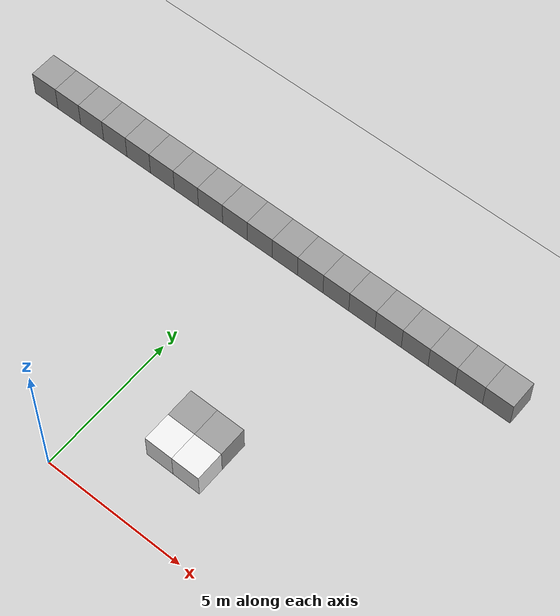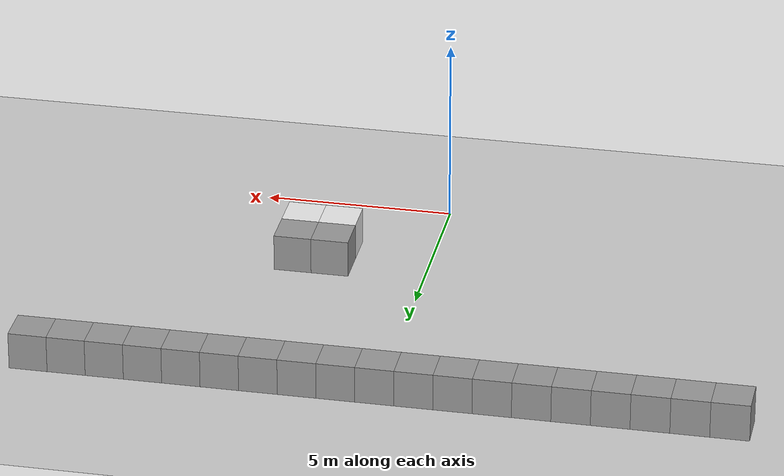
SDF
<sdf version="1.6">
 <world name="default">
  <model name="ground_plane">
   <static>1</static>
   <link name="link">
    <collision name="collision">
     <geometry><plane><normal>0 0 1</normal><size>100 100</size></plane></geometry>
     <surface><friction><ode><mu>100</mu><mu2>50</mu2></ode></friction></surface>
    </collision>
    <visual name="visual">
     <cast_shadows>0</cast_shadows>
     <geometry><plane><normal>0 0 1</normal><size>100 100</size></plane></geometry>
     <material>
      <script><uri>file://media/materials/scripts/gazebo.material</uri><name>Gazebo/Grey</name></script>
     </material>
    </visual>
   </link>
  </model>
  <model name="wall4_0">
   <link name="link">
    <inertial>
     <mass>1</mass>
     <inertia>
      <ixx>0.166667</ixx>
      <ixy>0</ixy>
      <ixz>0</ixz>
      <iyy>0.166667</iyy>
      <iyz>0</iyz>
      <izz>0.166667</izz>
     </inertia>
    </inertial>
    <visual name="visual">
     <geometry><box><size>1 1 1</size></box></geometry>
     <material>
      <script><name>Gazebo/Grey</name><uri>file://media/materials/scripts/gazebo.material</uri></script>
      <ambient>0.3 0.3 0.3 1</ambient>
      <diffuse>0.7 0.7 0.7 1</diffuse>
      <specular>0.01 0.01 0.01 1</specular>
      <emissive>0 0 0 1</emissive>
     </material>
    </visual>
    <collision name="collision">
     <geometry><box><size>1 1 1</size></box></geometry>
     <surface>
      <friction>
       <ode><mu>1</mu><mu2>1</mu2><fdir1>0 0 0</fdir1><slip1>0</slip1><slip2>0</slip2></ode>
       <torsional>
        <coefficient>1</coefficient>
        <patch_radius>0</patch_radius>
        <surface_radius>0</surface_radius>
        <use_patch_radius>1</use_patch_radius>
        <ode><slip>0</slip></ode>
       </torsional>
      </friction>
      <bounce><restitution_coefficient>0</restitution_coefficient><threshold>1e+06</threshold></bounce>
      <contact>
       <collide_without_contact>0</collide_without_contact>
       <collide_without_contact_bitmask>1</collide_without_contact_bitmask>
       <collide_bitmask>1</collide_bitmask>
       <ode>
        <soft_cfm>0</soft_cfm>
        <soft_erp>0.2</soft_erp>
        <kp>1e+13</kp>
        <kd>1</kd>
        <max_vel>0.01</max_vel>
        <min_depth>0</min_depth>
       </ode>
       <bullet>
        <split_impulse>1</split_impulse>
        <split_impulse_penetration_threshold>-0.01</split_impulse_penetration_threshold>
        <soft_cfm>0</soft_cfm>
        <soft_erp>0.2</soft_erp>
        <kp>1e+13</kp>
        <kd>1</kd>
       </bullet>
      </contact>
     </surface>
    </collision>
   </link>
   <link name="link_25">
    <pose>1 0 0 0 -0 0</pose>
    <inertial>
     <mass>1</mass>
     <inertia>
      <ixx>0.166667</ixx>
      <ixy>0</ixy>
      <ixz>0</ixz>
      <iyy>0.166667</iyy>
      <iyz>0</iyz>
      <izz>0.166667</izz>
     </inertia>
    </inertial>
    <visual name="visual">
     <geometry><box><size>1 1 1</size></box></geometry>
     <material>
      <lighting>1</lighting>
      <script><uri>file://media/materials/scripts/gazebo.material</uri><name>Gazebo/Grey</name></script>
      <ambient>0.3 0.3 0.3 1</ambient>
      <diffuse>0.7 0.7 0.7 1</diffuse>
      <specular>0.01 0.01 0.01 1</specular>
      <emissive>0 0 0 1</emissive>
     </material>
    </visual>
    <collision name="collision">
     <geometry><box><size>1 1 1</size></box></geometry>
     <surface>
      <friction>
       <ode><mu>1</mu><mu2>1</mu2><fdir1>0 0 0</fdir1><slip1>0</slip1><slip2>0</slip2></ode>
       <torsional>
        <coefficient>1</coefficient>
        <patch_radius>0</patch_radius>
        <surface_radius>0</surface_radius>
        <use_patch_radius>1</use_patch_radius>
        <ode><slip>0</slip></ode>
       </torsional>
      </friction>
      <bounce><restitution_coefficient>0</restitution_coefficient><threshold>1e+06</threshold></bounce>
      <contact>
       <collide_without_contact>0</collide_without_contact>
       <collide_without_contact_bitmask>1</collide_without_contact_bitmask>
       <collide_bitmask>1</collide_bitmask>
       <ode>
        <soft_cfm>0</soft_cfm>
        <soft_erp>0.2</soft_erp>
        <kp>1e+13</kp>
        <kd>1</kd>
        <max_vel>0.01</max_vel>
        <min_depth>0</min_depth>
       </ode>
       <bullet>
        <split_impulse>1</split_impulse>
        <split_impulse_penetration_threshold>-0.01</split_impulse_penetration_threshold>
        <soft_cfm>0</soft_cfm>
        <soft_erp>0.2</soft_erp>
        <kp>1e+13</kp>
        <kd>1</kd>
       </bullet>
      </contact>
     </surface>
    </collision>
   </link>
   <link name="link_26">
    <pose>2 0 0 0 -0 0</pose>
    <inertial>
     <mass>1</mass>
     <inertia>
      <ixx>0.166667</ixx>
      <ixy>0</ixy>
      <ixz>0</ixz>
      <iyy>0.166667</iyy>
      <iyz>0</iyz>
      <izz>0.166667</izz>
     </inertia>
    </inertial>
    <visual name="visual">
     <geometry><box><size>1 1 1</size></box></geometry>
     <material>
      <lighting>1</lighting>
      <script><uri>file://media/materials/scripts/gazebo.material</uri><name>Gazebo/Grey</name></script>
      <ambient>0.3 0.3 0.3 1</ambient>
      <diffuse>0.7 0.7 0.7 1</diffuse>
      <specular>0.01 0.01 0.01 1</specular>
      <emissive>0 0 0 1</emissive>
     </material>
    </visual>
    <collision name="collision">
     <geometry><box><size>1 1 1</size></box></geometry>
     <surface>
      <friction>
       <ode><mu>1</mu><mu2>1</mu2><fdir1>0 0 0</fdir1><slip1>0</slip1><slip2>0</slip2></ode>
       <torsional>
        <coefficient>1</coefficient>
        <patch_radius>0</patch_radius>
        <surface_radius>0</surface_radius>
        <use_patch_radius>1</use_patch_radius>
        <ode><slip>0</slip></ode>
       </torsional>
      </friction>
      <bounce><restitution_coefficient>0</restitution_coefficient><threshold>1e+06</threshold></bounce>
      <contact>
       <collide_without_contact>0</collide_without_contact>
       <collide_without_contact_bitmask>1</collide_without_contact_bitmask>
       <collide_bitmask>1</collide_bitmask>
       <ode>
        <soft_cfm>0</soft_cfm>
        <soft_erp>0.2</soft_erp>
        <kp>1e+13</kp>
        <kd>1</kd>
        <max_vel>0.01</max_vel>
        <min_depth>0</min_depth>
       </ode>
       <bullet>
        <split_impulse>1</split_impulse>
        <split_impulse_penetration_threshold>-0.01</split_impulse_penetration_threshold>
        <soft_cfm>0</soft_cfm>
        <soft_erp>0.2</soft_erp>
        <kp>1e+13</kp>
        <kd>1</kd>
       </bullet>
      </contact>
     </surface>
    </collision>
   </link>
   <link name="link_27">
    <pose>3 0 0 0 -0 0</pose>
    <inertial>
     <mass>1</mass>
     <inertia>
      <ixx>0.166667</ixx>
      <ixy>0</ixy>
      <ixz>0</ixz>
      <iyy>0.166667</iyy>
      <iyz>0</iyz>
      <izz>0.166667</izz>
     </inertia>
    </inertial>
    <visual name="visual">
     <geometry><box><size>1 1 1</size></box></geometry>
     <material>
      <lighting>1</lighting>
      <script><uri>file://media/materials/scripts/gazebo.material</uri><name>Gazebo/Grey</name></script>
      <ambient>0.3 0.3 0.3 1</ambient>
      <diffuse>0.7 0.7 0.7 1</diffuse>
      <specular>0.01 0.01 0.01 1</specular>
      <emissive>0 0 0 1</emissive>
     </material>
    </visual>
    <collision name="collision">
     <geometry><box><size>1 1 1</size></box></geometry>
     <surface>
      <friction>
       <ode><mu>1</mu><mu2>1</mu2><fdir1>0 0 0</fdir1><slip1>0</slip1><slip2>0</slip2></ode>
       <torsional>
        <coefficient>1</coefficient>
        <patch_radius>0</patch_radius>
        <surface_radius>0</surface_radius>
        <use_patch_radius>1</use_patch_radius>
        <ode><slip>0</slip></ode>
       </torsional>
      </friction>
      <bounce><restitution_coefficient>0</restitution_coefficient><threshold>1e+06</threshold></bounce>
      <contact>
       <collide_without_contact>0</collide_without_contact>
       <collide_without_contact_bitmask>1</collide_without_contact_bitmask>
       <collide_bitmask>1</collide_bitmask>
       <ode>
        <soft_cfm>0</soft_cfm>
        <soft_erp>0.2</soft_erp>
        <kp>1e+13</kp>
        <kd>1</kd>
        <max_vel>0.01</max_vel>
        <min_depth>0</min_depth>
       </ode>
       <bullet>
        <split_impulse>1</split_impulse>
        <split_impulse_penetration_threshold>-0.01</split_impulse_penetration_threshold>
        <soft_cfm>0</soft_cfm>
        <soft_erp>0.2</soft_erp>
        <kp>1e+13</kp>
        <kd>1</kd>
       </bullet>
      </contact>
     </surface>
    </collision>
   </link>
   <link name="link_28">
    <pose>4 0 0 0 -0 0</pose>
    <inertial>
     <mass>1</mass>
     <inertia>
      <ixx>0.166667</ixx>
      <ixy>0</ixy>
      <ixz>0</ixz>
      <iyy>0.166667</iyy>
      <iyz>0</iyz>
      <izz>0.166667</izz>
     </inertia>
    </inertial>
    <visual name="visual">
     <geometry><box><size>1 1 1</size></box></geometry>
     <material>
      <lighting>1</lighting>
      <script><uri>file://media/materials/scripts/gazebo.material</uri><name>Gazebo/Grey</name></script>
      <ambient>0.3 0.3 0.3 1</ambient>
      <diffuse>0.7 0.7 0.7 1</diffuse>
      <specular>0.01 0.01 0.01 1</specular>
      <emissive>0 0 0 1</emissive>
     </material>
    </visual>
    <collision name="collision">
     <geometry><box><size>1 1 1</size></box></geometry>
     <surface>
      <friction>
       <ode><mu>1</mu><mu2>1</mu2><fdir1>0 0 0</fdir1><slip1>0</slip1><slip2>0</slip2></ode>
       <torsional>
        <coefficient>1</coefficient>
        <patch_radius>0</patch_radius>
        <surface_radius>0</surface_radius>
        <use_patch_radius>1</use_patch_radius>
        <ode><slip>0</slip></ode>
       </torsional>
      </friction>
      <bounce><restitution_coefficient>0</restitution_coefficient><threshold>1e+06</threshold></bounce>
      <contact>
       <collide_without_contact>0</collide_without_contact>
       <collide_without_contact_bitmask>1</collide_without_contact_bitmask>
       <collide_bitmask>1</collide_bitmask>
       <ode>
        <soft_cfm>0</soft_cfm>
        <soft_erp>0.2</soft_erp>
        <kp>1e+13</kp>
        <kd>1</kd>
        <max_vel>0.01</max_vel>
        <min_depth>0</min_depth>
       </ode>
       <bullet>
        <split_impulse>1</split_impulse>
        <split_impulse_penetration_threshold>-0.01</split_impulse_penetration_threshold>
        <soft_cfm>0</soft_cfm>
        <soft_erp>0.2</soft_erp>
        <kp>1e+13</kp>
        <kd>1</kd>
       </bullet>
      </contact>
     </surface>
    </collision>
   </link>
   <link name="link_29">
    <pose>5 0 0 0 -0 0</pose>
    <inertial>
     <mass>1</mass>
     <inertia>
      <ixx>0.166667</ixx>
      <ixy>0</ixy>
      <ixz>0</ixz>
      <iyy>0.166667</iyy>
      <iyz>0</iyz>
      <izz>0.166667</izz>
     </inertia>
    </inertial>
    <visual name="visual">
     <geometry><box><size>1 1 1</size></box></geometry>
     <material>
      <lighting>1</lighting>
      <script><uri>file://media/materials/scripts/gazebo.material</uri><name>Gazebo/Grey</name></script>
      <ambient>0.3 0.3 0.3 1</ambient>
      <diffuse>0.7 0.7 0.7 1</diffuse>
      <specular>0.01 0.01 0.01 1</specular>
      <emissive>0 0 0 1</emissive>
     </material>
    </visual>
    <collision name="collision">
     <geometry><box><size>1 1 1</size></box></geometry>
     <surface>
      <friction>
       <ode><mu>1</mu><mu2>1</mu2><fdir1>0 0 0</fdir1><slip1>0</slip1><slip2>0</slip2></ode>
       <torsional>
        <coefficient>1</coefficient>
        <patch_radius>0</patch_radius>
        <surface_radius>0</surface_radius>
        <use_patch_radius>1</use_patch_radius>
        <ode><slip>0</slip></ode>
       </torsional>
      </friction>
      <bounce><restitution_coefficient>0</restitution_coefficient><threshold>1e+06</threshold></bounce>
      <contact>
       <collide_without_contact>0</collide_without_contact>
       <collide_without_contact_bitmask>1</collide_without_contact_bitmask>
       <collide_bitmask>1</collide_bitmask>
       <ode>
        <soft_cfm>0</soft_cfm>
        <soft_erp>0.2</soft_erp>
        <kp>1e+13</kp>
        <kd>1</kd>
        <max_vel>0.01</max_vel>
        <min_depth>0</min_depth>
       </ode>
       <bullet>
        <split_impulse>1</split_impulse>
        <split_impulse_penetration_threshold>-0.01</split_impulse_penetration_threshold>
        <soft_cfm>0</soft_cfm>
        <soft_erp>0.2</soft_erp>
        <kp>1e+13</kp>
        <kd>1</kd>
       </bullet>
      </contact>
     </surface>
    </collision>
   </link>
   <link name="link_30">
    <pose>6 0 0 0 -0 0</pose>
    <inertial>
     <mass>1</mass>
     <inertia>
      <ixx>0.166667</ixx>
      <ixy>0</ixy>
      <ixz>0</ixz>
      <iyy>0.166667</iyy>
      <iyz>0</iyz>
      <izz>0.166667</izz>
     </inertia>
    </inertial>
    <visual name="visual">
     <geometry><box><size>1 1 1</size></box></geometry>
     <material>
      <lighting>1</lighting>
      <script><uri>file://media/materials/scripts/gazebo.material</uri><name>Gazebo/Grey</name></script>
      <ambient>0.3 0.3 0.3 1</ambient>
      <diffuse>0.7 0.7 0.7 1</diffuse>
      <specular>0.01 0.01 0.01 1</specular>
      <emissive>0 0 0 1</emissive>
     </material>
    </visual>
    <collision name="collision">
     <geometry><box><size>1 1 1</size></box></geometry>
     <surface>
      <friction>
       <ode><mu>1</mu><mu2>1</mu2><fdir1>0 0 0</fdir1><slip1>0</slip1><slip2>0</slip2></ode>
       <torsional>
        <coefficient>1</coefficient>
        <patch_radius>0</patch_radius>
        <surface_radius>0</surface_radius>
        <use_patch_radius>1</use_patch_radius>
        <ode><slip>0</slip></ode>
       </torsional>
      </friction>
      <bounce><restitution_coefficient>0</restitution_coefficient><threshold>1e+06</threshold></bounce>
      <contact>
       <collide_without_contact>0</collide_without_contact>
       <collide_without_contact_bitmask>1</collide_without_contact_bitmask>
       <collide_bitmask>1</collide_bitmask>
       <ode>
        <soft_cfm>0</soft_cfm>
        <soft_erp>0.2</soft_erp>
        <kp>1e+13</kp>
        <kd>1</kd>
        <max_vel>0.01</max_vel>
        <min_depth>0</min_depth>
       </ode>
       <bullet>
        <split_impulse>1</split_impulse>
        <split_impulse_penetration_threshold>-0.01</split_impulse_penetration_threshold>
        <soft_cfm>0</soft_cfm>
        <soft_erp>0.2</soft_erp>
        <kp>1e+13</kp>
        <kd>1</kd>
       </bullet>
      </contact>
     </surface>
    </collision>
   </link>
   <link name="link_31">
    <pose>7 0 0 0 -0 0</pose>
    <inertial>
     <mass>1</mass>
     <inertia>
      <ixx>0.166667</ixx>
      <ixy>0</ixy>
      <ixz>0</ixz>
      <iyy>0.166667</iyy>
      <iyz>0</iyz>
      <izz>0.166667</izz>
     </inertia>
    </inertial>
    <visual name="visual">
     <geometry><box><size>1 1 1</size></box></geometry>
     <material>
      <lighting>1</lighting>
      <script><uri>file://media/materials/scripts/gazebo.material</uri><name>Gazebo/Grey</name></script>
      <ambient>0.3 0.3 0.3 1</ambient>
      <diffuse>0.7 0.7 0.7 1</diffuse>
      <specular>0.01 0.01 0.01 1</specular>
      <emissive>0 0 0 1</emissive>
     </material>
    </visual>
    <collision name="collision">
     <geometry><box><size>1 1 1</size></box></geometry>
     <surface>
      <friction>
       <ode><mu>1</mu><mu2>1</mu2><fdir1>0 0 0</fdir1><slip1>0</slip1><slip2>0</slip2></ode>
       <torsional>
        <coefficient>1</coefficient>
        <patch_radius>0</patch_radius>
        <surface_radius>0</surface_radius>
        <use_patch_radius>1</use_patch_radius>
        <ode><slip>0</slip></ode>
       </torsional>
      </friction>
      <bounce><restitution_coefficient>0</restitution_coefficient><threshold>1e+06</threshold></bounce>
      <contact>
       <collide_without_contact>0</collide_without_contact>
       <collide_without_contact_bitmask>1</collide_without_contact_bitmask>
       <collide_bitmask>1</collide_bitmask>
       <ode>
        <soft_cfm>0</soft_cfm>
        <soft_erp>0.2</soft_erp>
        <kp>1e+13</kp>
        <kd>1</kd>
        <max_vel>0.01</max_vel>
        <min_depth>0</min_depth>
       </ode>
       <bullet>
        <split_impulse>1</split_impulse>
        <split_impulse_penetration_threshold>-0.01</split_impulse_penetration_threshold>
        <soft_cfm>0</soft_cfm>
        <soft_erp>0.2</soft_erp>
        <kp>1e+13</kp>
        <kd>1</kd>
       </bullet>
      </contact>
     </surface>
    </collision>
   </link>
   <link name="link_32">
    <pose>8 0 0 0 -0 0</pose>
    <inertial>
     <mass>1</mass>
     <inertia>
      <ixx>0.166667</ixx>
      <ixy>0</ixy>
      <ixz>0</ixz>
      <iyy>0.166667</iyy>
      <iyz>0</iyz>
      <izz>0.166667</izz>
     </inertia>
    </inertial>
    <visual name="visual">
     <geometry><box><size>1 1 1</size></box></geometry>
     <material>
      <lighting>1</lighting>
      <script><uri>file://media/materials/scripts/gazebo.material</uri><name>Gazebo/Grey</name></script>
      <ambient>0.3 0.3 0.3 1</ambient>
      <diffuse>0.7 0.7 0.7 1</diffuse>
      <specular>0.01 0.01 0.01 1</specular>
      <emissive>0 0 0 1</emissive>
     </material>
    </visual>
    <collision name="collision">
     <geometry><box><size>1 1 1</size></box></geometry>
     <surface>
      <friction>
       <ode><mu>1</mu><mu2>1</mu2><fdir1>0 0 0</fdir1><slip1>0</slip1><slip2>0</slip2></ode>
       <torsional>
        <coefficient>1</coefficient>
        <patch_radius>0</patch_radius>
        <surface_radius>0</surface_radius>
        <use_patch_radius>1</use_patch_radius>
        <ode><slip>0</slip></ode>
       </torsional>
      </friction>
      <bounce><restitution_coefficient>0</restitution_coefficient><threshold>1e+06</threshold></bounce>
      <contact>
       <collide_without_contact>0</collide_without_contact>
       <collide_without_contact_bitmask>1</collide_without_contact_bitmask>
       <collide_bitmask>1</collide_bitmask>
       <ode>
        <soft_cfm>0</soft_cfm>
        <soft_erp>0.2</soft_erp>
        <kp>1e+13</kp>
        <kd>1</kd>
        <max_vel>0.01</max_vel>
        <min_depth>0</min_depth>
       </ode>
       <bullet>
        <split_impulse>1</split_impulse>
        <split_impulse_penetration_threshold>-0.01</split_impulse_penetration_threshold>
        <soft_cfm>0</soft_cfm>
        <soft_erp>0.2</soft_erp>
        <kp>1e+13</kp>
        <kd>1</kd>
       </bullet>
      </contact>
     </surface>
    </collision>
   </link>
   <link name="link_33">
    <pose>9 0 0 0 -0 0</pose>
    <inertial>
     <mass>1</mass>
     <inertia>
      <ixx>0.166667</ixx>
      <ixy>0</ixy>
      <ixz>0</ixz>
      <iyy>0.166667</iyy>
      <iyz>0</iyz>
      <izz>0.166667</izz>
     </inertia>
    </inertial>
    <visual name="visual">
     <geometry><box><size>1 1 1</size></box></geometry>
     <material>
      <lighting>1</lighting>
      <script><uri>file://media/materials/scripts/gazebo.material</uri><name>Gazebo/Grey</name></script>
      <ambient>0.3 0.3 0.3 1</ambient>
      <diffuse>0.7 0.7 0.7 1</diffuse>
      <specular>0.01 0.01 0.01 1</specular>
      <emissive>0 0 0 1</emissive>
     </material>
    </visual>
    <collision name="collision">
     <geometry><box><size>1 1 1</size></box></geometry>
     <surface>
      <friction>
       <ode><mu>1</mu><mu2>1</mu2><fdir1>0 0 0</fdir1><slip1>0</slip1><slip2>0</slip2></ode>
       <torsional>
        <coefficient>1</coefficient>
        <patch_radius>0</patch_radius>
        <surface_radius>0</surface_radius>
        <use_patch_radius>1</use_patch_radius>
        <ode><slip>0</slip></ode>
       </torsional>
      </friction>
      <bounce><restitution_coefficient>0</restitution_coefficient><threshold>1e+06</threshold></bounce>
      <contact>
       <collide_without_contact>0</collide_without_contact>
       <collide_without_contact_bitmask>1</collide_without_contact_bitmask>
       <collide_bitmask>1</collide_bitmask>
       <ode>
        <soft_cfm>0</soft_cfm>
        <soft_erp>0.2</soft_erp>
        <kp>1e+13</kp>
        <kd>1</kd>
        <max_vel>0.01</max_vel>
        <min_depth>0</min_depth>
       </ode>
       <bullet>
        <split_impulse>1</split_impulse>
        <split_impulse_penetration_threshold>-0.01</split_impulse_penetration_threshold>
        <soft_cfm>0</soft_cfm>
        <soft_erp>0.2</soft_erp>
        <kp>1e+13</kp>
        <kd>1</kd>
       </bullet>
      </contact>
     </surface>
    </collision>
   </link>
   <link name="link_34">
    <pose>-1 0 0 0 -0 0</pose>
    <inertial>
     <mass>1</mass>
     <inertia>
      <ixx>0.166667</ixx>
      <ixy>0</ixy>
      <ixz>0</ixz>
      <iyy>0.166667</iyy>
      <iyz>0</iyz>
      <izz>0.166667</izz>
     </inertia>
    </inertial>
    <visual name="visual">
     <geometry><box><size>1 1 1</size></box></geometry>
     <material>
      <lighting>1</lighting>
      <script><uri>file://media/materials/scripts/gazebo.material</uri><name>Gazebo/Grey</name></script>
      <ambient>0.3 0.3 0.3 1</ambient>
      <diffuse>0.7 0.7 0.7 1</diffuse>
      <specular>0.01 0.01 0.01 1</specular>
      <emissive>0 0 0 1</emissive>
     </material>
    </visual>
    <collision name="collision">
     <geometry><box><size>1 1 1</size></box></geometry>
     <surface>
      <friction>
       <ode><mu>1</mu><mu2>1</mu2><fdir1>0 0 0</fdir1><slip1>0</slip1><slip2>0</slip2></ode>
       <torsional>
        <coefficient>1</coefficient>
        <patch_radius>0</patch_radius>
        <surface_radius>0</surface_radius>
        <use_patch_radius>1</use_patch_radius>
        <ode><slip>0</slip></ode>
       </torsional>
      </friction>
      <bounce><restitution_coefficient>0</restitution_coefficient><threshold>1e+06</threshold></bounce>
      <contact>
       <collide_without_contact>0</collide_without_contact>
       <collide_without_contact_bitmask>1</collide_without_contact_bitmask>
       <collide_bitmask>1</collide_bitmask>
       <ode>
        <soft_cfm>0</soft_cfm>
        <soft_erp>0.2</soft_erp>
        <kp>1e+13</kp>
        <kd>1</kd>
        <max_vel>0.01</max_vel>
        <min_depth>0</min_depth>
       </ode>
       <bullet>
        <split_impulse>1</split_impulse>
        <split_impulse_penetration_threshold>-0.01</split_impulse_penetration_threshold>
        <soft_cfm>0</soft_cfm>
        <soft_erp>0.2</soft_erp>
        <kp>1e+13</kp>
        <kd>1</kd>
       </bullet>
      </contact>
     </surface>
    </collision>
   </link>
   <link name="link_35">
    <pose>-2 0 0 0 -0 0</pose>
    <inertial>
     <mass>1</mass>
     <inertia>
      <ixx>0.166667</ixx>
      <ixy>0</ixy>
      <ixz>0</ixz>
      <iyy>0.166667</iyy>
      <iyz>0</iyz>
      <izz>0.166667</izz>
     </inertia>
    </inertial>
    <visual name="visual">
     <geometry><box><size>1 1 1</size></box></geometry>
     <material>
      <lighting>1</lighting>
      <script><uri>file://media/materials/scripts/gazebo.material</uri><name>Gazebo/Grey</name></script>
      <ambient>0.3 0.3 0.3 1</ambient>
      <diffuse>0.7 0.7 0.7 1</diffuse>
      <specular>0.01 0.01 0.01 1</specular>
      <emissive>0 0 0 1</emissive>
     </material>
    </visual>
    <collision name="collision">
     <geometry><box><size>1 1 1</size></box></geometry>
     <surface>
      <friction>
       <ode><mu>1</mu><mu2>1</mu2><fdir1>0 0 0</fdir1><slip1>0</slip1><slip2>0</slip2></ode>
       <torsional>
        <coefficient>1</coefficient>
        <patch_radius>0</patch_radius>
        <surface_radius>0</surface_radius>
        <use_patch_radius>1</use_patch_radius>
        <ode><slip>0</slip></ode>
       </torsional>
      </friction>
      <bounce><restitution_coefficient>0</restitution_coefficient><threshold>1e+06</threshold></bounce>
      <contact>
       <collide_without_contact>0</collide_without_contact>
       <collide_without_contact_bitmask>1</collide_without_contact_bitmask>
       <collide_bitmask>1</collide_bitmask>
       <ode>
        <soft_cfm>0</soft_cfm>
        <soft_erp>0.2</soft_erp>
        <kp>1e+13</kp>
        <kd>1</kd>
        <max_vel>0.01</max_vel>
        <min_depth>0</min_depth>
       </ode>
       <bullet>
        <split_impulse>1</split_impulse>
        <split_impulse_penetration_threshold>-0.01</split_impulse_penetration_threshold>
        <soft_cfm>0</soft_cfm>
        <soft_erp>0.2</soft_erp>
        <kp>1e+13</kp>
        <kd>1</kd>
       </bullet>
      </contact>
     </surface>
    </collision>
   </link>
   <link name="link_36">
    <pose>-3 0 0 0 -0 0</pose>
    <inertial>
     <mass>1</mass>
     <inertia>
      <ixx>0.166667</ixx>
      <ixy>0</ixy>
      <ixz>0</ixz>
      <iyy>0.166667</iyy>
      <iyz>0</iyz>
      <izz>0.166667</izz>
     </inertia>
    </inertial>
    <visual name="visual">
     <geometry><box><size>1 1 1</size></box></geometry>
     <material>
      <lighting>1</lighting>
      <script><uri>file://media/materials/scripts/gazebo.material</uri><name>Gazebo/Grey</name></script>
      <ambient>0.3 0.3 0.3 1</ambient>
      <diffuse>0.7 0.7 0.7 1</diffuse>
      <specular>0.01 0.01 0.01 1</specular>
      <emissive>0 0 0 1</emissive>
     </material>
    </visual>
    <collision name="collision">
     <geometry><box><size>1 1 1</size></box></geometry>
     <surface>
      <friction>
       <ode><mu>1</mu><mu2>1</mu2><fdir1>0 0 0</fdir1><slip1>0</slip1><slip2>0</slip2></ode>
       <torsional>
        <coefficient>1</coefficient>
        <patch_radius>0</patch_radius>
        <surface_radius>0</surface_radius>
        <use_patch_radius>1</use_patch_radius>
        <ode><slip>0</slip></ode>
       </torsional>
      </friction>
      <bounce><restitution_coefficient>0</restitution_coefficient><threshold>1e+06</threshold></bounce>
      <contact>
       <collide_without_contact>0</collide_without_contact>
       <collide_without_contact_bitmask>1</collide_without_contact_bitmask>
       <collide_bitmask>1</collide_bitmask>
       <ode>
        <soft_cfm>0</soft_cfm>
        <soft_erp>0.2</soft_erp>
        <kp>1e+13</kp>
        <kd>1</kd>
        <max_vel>0.01</max_vel>
        <min_depth>0</min_depth>
       </ode>
       <bullet>
        <split_impulse>1</split_impulse>
        <split_impulse_penetration_threshold>-0.01</split_impulse_penetration_threshold>
        <soft_cfm>0</soft_cfm>
        <soft_erp>0.2</soft_erp>
        <kp>1e+13</kp>
        <kd>1</kd>
       </bullet>
      </contact>
     </surface>
    </collision>
   </link>
   <link name="link_37">
    <pose>-4 0 0 0 -0 0</pose>
    <inertial>
     <mass>1</mass>
     <inertia>
      <ixx>0.166667</ixx>
      <ixy>0</ixy>
      <ixz>0</ixz>
      <iyy>0.166667</iyy>
      <iyz>0</iyz>
      <izz>0.166667</izz>
     </inertia>
    </inertial>
    <visual name="visual">
     <geometry><box><size>1 1 1</size></box></geometry>
     <material>
      <lighting>1</lighting>
      <script><uri>file://media/materials/scripts/gazebo.material</uri><name>Gazebo/Grey</name></script>
      <ambient>0.3 0.3 0.3 1</ambient>
      <diffuse>0.7 0.7 0.7 1</diffuse>
      <specular>0.01 0.01 0.01 1</specular>
      <emissive>0 0 0 1</emissive>
     </material>
    </visual>
    <collision name="collision">
     <geometry><box><size>1 1 1</size></box></geometry>
     <surface>
      <friction>
       <ode><mu>1</mu><mu2>1</mu2><fdir1>0 0 0</fdir1><slip1>0</slip1><slip2>0</slip2></ode>
       <torsional>
        <coefficient>1</coefficient>
        <patch_radius>0</patch_radius>
        <surface_radius>0</surface_radius>
        <use_patch_radius>1</use_patch_radius>
        <ode><slip>0</slip></ode>
       </torsional>
      </friction>
      <bounce><restitution_coefficient>0</restitution_coefficient><threshold>1e+06</threshold></bounce>
      <contact>
       <collide_without_contact>0</collide_without_contact>
       <collide_without_contact_bitmask>1</collide_without_contact_bitmask>
       <collide_bitmask>1</collide_bitmask>
       <ode>
        <soft_cfm>0</soft_cfm>
        <soft_erp>0.2</soft_erp>
        <kp>1e+13</kp>
        <kd>1</kd>
        <max_vel>0.01</max_vel>
        <min_depth>0</min_depth>
       </ode>
       <bullet>
        <split_impulse>1</split_impulse>
        <split_impulse_penetration_threshold>-0.01</split_impulse_penetration_threshold>
        <soft_cfm>0</soft_cfm>
        <soft_erp>0.2</soft_erp>
        <kp>1e+13</kp>
        <kd>1</kd>
       </bullet>
      </contact>
     </surface>
    </collision>
   </link>
   <link name="link_38">
    <pose>-5 0 0 0 -0 0</pose>
    <inertial>
     <mass>1</mass>
     <inertia>
      <ixx>0.166667</ixx>
      <ixy>0</ixy>
      <ixz>0</ixz>
      <iyy>0.166667</iyy>
      <iyz>0</iyz>
      <izz>0.166667</izz>
     </inertia>
    </inertial>
    <visual name="visual">
     <geometry><box><size>1 1 1</size></box></geometry>
     <material>
      <lighting>1</lighting>
      <script><uri>file://media/materials/scripts/gazebo.material</uri><name>Gazebo/Grey</name></script>
      <ambient>0.3 0.3 0.3 1</ambient>
      <diffuse>0.7 0.7 0.7 1</diffuse>
      <specular>0.01 0.01 0.01 1</specular>
      <emissive>0 0 0 1</emissive>
     </material>
    </visual>
    <collision name="collision">
     <geometry><box><size>1 1 1</size></box></geometry>
     <surface>
      <friction>
       <ode><mu>1</mu><mu2>1</mu2><fdir1>0 0 0</fdir1><slip1>0</slip1><slip2>0</slip2></ode>
       <torsional>
        <coefficient>1</coefficient>
        <patch_radius>0</patch_radius>
        <surface_radius>0</surface_radius>
        <use_patch_radius>1</use_patch_radius>
        <ode><slip>0</slip></ode>
       </torsional>
      </friction>
      <bounce><restitution_coefficient>0</restitution_coefficient><threshold>1e+06</threshold></bounce>
      <contact>
       <collide_without_contact>0</collide_without_contact>
       <collide_without_contact_bitmask>1</collide_without_contact_bitmask>
       <collide_bitmask>1</collide_bitmask>
       <ode>
        <soft_cfm>0</soft_cfm>
        <soft_erp>0.2</soft_erp>
        <kp>1e+13</kp>
        <kd>1</kd>
        <max_vel>0.01</max_vel>
        <min_depth>0</min_depth>
       </ode>
       <bullet>
        <split_impulse>1</split_impulse>
        <split_impulse_penetration_threshold>-0.01</split_impulse_penetration_threshold>
        <soft_cfm>0</soft_cfm>
        <soft_erp>0.2</soft_erp>
        <kp>1e+13</kp>
        <kd>1</kd>
       </bullet>
      </contact>
     </surface>
    </collision>
   </link>
   <link name="link_39">
    <pose>-6 0 0 0 -0 0</pose>
    <inertial>
     <mass>1</mass>
     <inertia>
      <ixx>0.166667</ixx>
      <ixy>0</ixy>
      <ixz>0</ixz>
      <iyy>0.166667</iyy>
      <iyz>0</iyz>
      <izz>0.166667</izz>
     </inertia>
    </inertial>
    <visual name="visual">
     <geometry><box><size>1 1 1</size></box></geometry>
     <material>
      <lighting>1</lighting>
      <script><uri>file://media/materials/scripts/gazebo.material</uri><name>Gazebo/Grey</name></script>
      <ambient>0.3 0.3 0.3 1</ambient>
      <diffuse>0.7 0.7 0.7 1</diffuse>
      <specular>0.01 0.01 0.01 1</specular>
      <emissive>0 0 0 1</emissive>
     </material>
    </visual>
    <collision name="collision">
     <geometry><box><size>1 1 1</size></box></geometry>
     <surface>
      <friction>
       <ode><mu>1</mu><mu2>1</mu2><fdir1>0 0 0</fdir1><slip1>0</slip1><slip2>0</slip2></ode>
       <torsional>
        <coefficient>1</coefficient>
        <patch_radius>0</patch_radius>
        <surface_radius>0</surface_radius>
        <use_patch_radius>1</use_patch_radius>
        <ode><slip>0</slip></ode>
       </torsional>
      </friction>
      <bounce><restitution_coefficient>0</restitution_coefficient><threshold>1e+06</threshold></bounce>
      <contact>
       <collide_without_contact>0</collide_without_contact>
       <collide_without_contact_bitmask>1</collide_without_contact_bitmask>
       <collide_bitmask>1</collide_bitmask>
       <ode>
        <soft_cfm>0</soft_cfm>
        <soft_erp>0.2</soft_erp>
        <kp>1e+13</kp>
        <kd>1</kd>
        <max_vel>0.01</max_vel>
        <min_depth>0</min_depth>
       </ode>
       <bullet>
        <split_impulse>1</split_impulse>
        <split_impulse_penetration_threshold>-0.01</split_impulse_penetration_threshold>
        <soft_cfm>0</soft_cfm>
        <soft_erp>0.2</soft_erp>
        <kp>1e+13</kp>
        <kd>1</kd>
       </bullet>
      </contact>
     </surface>
    </collision>
   </link>
   <link name="link_40">
    <pose>-7 0 0 0 -0 0</pose>
    <inertial>
     <mass>1</mass>
     <inertia>
      <ixx>0.166667</ixx>
      <ixy>0</ixy>
      <ixz>0</ixz>
      <iyy>0.166667</iyy>
      <iyz>0</iyz>
      <izz>0.166667</izz>
     </inertia>
    </inertial>
    <visual name="visual">
     <geometry><box><size>1 1 1</size></box></geometry>
     <material>
      <lighting>1</lighting>
      <script><uri>file://media/materials/scripts/gazebo.material</uri><name>Gazebo/Grey</name></script>
      <ambient>0.3 0.3 0.3 1</ambient>
      <diffuse>0.7 0.7 0.7 1</diffuse>
      <specular>0.01 0.01 0.01 1</specular>
      <emissive>0 0 0 1</emissive>
     </material>
    </visual>
    <collision name="collision">
     <geometry><box><size>1 1 1</size></box></geometry>
     <surface>
      <friction>
       <ode><mu>1</mu><mu2>1</mu2><fdir1>0 0 0</fdir1><slip1>0</slip1><slip2>0</slip2></ode>
       <torsional>
        <coefficient>1</coefficient>
        <patch_radius>0</patch_radius>
        <surface_radius>0</surface_radius>
        <use_patch_radius>1</use_patch_radius>
        <ode><slip>0</slip></ode>
       </torsional>
      </friction>
      <bounce><restitution_coefficient>0</restitution_coefficient><threshold>1e+06</threshold></bounce>
      <contact>
       <collide_without_contact>0</collide_without_contact>
       <collide_without_contact_bitmask>1</collide_without_contact_bitmask>
       <collide_bitmask>1</collide_bitmask>
       <ode>
        <soft_cfm>0</soft_cfm>
        <soft_erp>0.2</soft_erp>
        <kp>1e+13</kp>
        <kd>1</kd>
        <max_vel>0.01</max_vel>
        <min_depth>0</min_depth>
       </ode>
       <bullet>
        <split_impulse>1</split_impulse>
        <split_impulse_penetration_threshold>-0.01</split_impulse_penetration_threshold>
        <soft_cfm>0</soft_cfm>
        <soft_erp>0.2</soft_erp>
        <kp>1e+13</kp>
        <kd>1</kd>
       </bullet>
      </contact>
     </surface>
    </collision>
   </link>
   <link name="link_41">
    <pose>-8 0 0 0 -0 0</pose>
    <inertial>
     <mass>1</mass>
     <inertia>
      <ixx>0.166667</ixx>
      <ixy>0</ixy>
      <ixz>0</ixz>
      <iyy>0.166667</iyy>
      <iyz>0</iyz>
      <izz>0.166667</izz>
     </inertia>
    </inertial>
    <visual name="visual">
     <geometry><box><size>1 1 1</size></box></geometry>
     <material>
      <lighting>1</lighting>
      <script><uri>file://media/materials/scripts/gazebo.material</uri><name>Gazebo/Grey</name></script>
      <ambient>0.3 0.3 0.3 1</ambient>
      <diffuse>0.7 0.7 0.7 1</diffuse>
      <specular>0.01 0.01 0.01 1</specular>
      <emissive>0 0 0 1</emissive>
     </material>
    </visual>
    <collision name="collision">
     <geometry><box><size>1 1 1</size></box></geometry>
     <surface>
      <friction>
       <ode><mu>1</mu><mu2>1</mu2><fdir1>0 0 0</fdir1><slip1>0</slip1><slip2>0</slip2></ode>
       <torsional>
        <coefficient>1</coefficient>
        <patch_radius>0</patch_radius>
        <surface_radius>0</surface_radius>
        <use_patch_radius>1</use_patch_radius>
        <ode><slip>0</slip></ode>
       </torsional>
      </friction>
      <bounce><restitution_coefficient>0</restitution_coefficient><threshold>1e+06</threshold></bounce>
      <contact>
       <collide_without_contact>0</collide_without_contact>
       <collide_without_contact_bitmask>1</collide_without_contact_bitmask>
       <collide_bitmask>1</collide_bitmask>
       <ode>
        <soft_cfm>0</soft_cfm>
        <soft_erp>0.2</soft_erp>
        <kp>1e+13</kp>
        <kd>1</kd>
        <max_vel>0.01</max_vel>
        <min_depth>0</min_depth>
       </ode>
       <bullet>
        <split_impulse>1</split_impulse>
        <split_impulse_penetration_threshold>-0.01</split_impulse_penetration_threshold>
        <soft_cfm>0</soft_cfm>
        <soft_erp>0.2</soft_erp>
        <kp>1e+13</kp>
        <kd>1</kd>
       </bullet>
      </contact>
     </surface>
    </collision>
   </link>
   <link name="link_42">
    <pose>-9 0 0 0 -0 0</pose>
    <inertial>
     <mass>1</mass>
     <inertia>
      <ixx>0.166667</ixx>
      <ixy>0</ixy>
      <ixz>0</ixz>
      <iyy>0.166667</iyy>
      <iyz>0</iyz>
      <izz>0.166667</izz>
     </inertia>
    </inertial>
    <visual name="visual">
     <geometry><box><size>1 1 1</size></box></geometry>
     <material>
      <lighting>1</lighting>
      <script><uri>file://media/materials/scripts/gazebo.material</uri><name>Gazebo/Grey</name></script>
      <ambient>0.3 0.3 0.3 1</ambient>
      <diffuse>0.7 0.7 0.7 1</diffuse>
      <specular>0.01 0.01 0.01 1</specular>
      <emissive>0 0 0 1</emissive>
     </material>
    </visual>
    <collision name="collision">
     <geometry><box><size>1 1 1</size></box></geometry>
     <surface>
      <friction>
       <ode><mu>1</mu><mu2>1</mu2><fdir1>0 0 0</fdir1><slip1>0</slip1><slip2>0</slip2></ode>
       <torsional>
        <coefficient>1</coefficient>
        <patch_radius>0</patch_radius>
        <surface_radius>0</surface_radius>
        <use_patch_radius>1</use_patch_radius>
        <ode><slip>0</slip></ode>
       </torsional>
      </friction>
      <bounce><restitution_coefficient>0</restitution_coefficient><threshold>1e+06</threshold></bounce>
      <contact>
       <collide_without_contact>0</collide_without_contact>
       <collide_without_contact_bitmask>1</collide_without_contact_bitmask>
       <collide_bitmask>1</collide_bitmask>
       <ode>
        <soft_cfm>0</soft_cfm>
        <soft_erp>0.2</soft_erp>
        <kp>1e+13</kp>
        <kd>1</kd>
        <max_vel>0.01</max_vel>
        <min_depth>0</min_depth>
       </ode>
       <bullet>
        <split_impulse>1</split_impulse>
        <split_impulse_penetration_threshold>-0.01</split_impulse_penetration_threshold>
        <soft_cfm>0</soft_cfm>
        <soft_erp>0.2</soft_erp>
        <kp>1e+13</kp>
        <kd>1</kd>
       </bullet>
      </contact>
     </surface>
    </collision>
   </link>
   <static>0</static>
   <pose>0 10 0.5 0 -0 0</pose>
  </model>
  <model name="obstacle3_0">
   <link name="link">
    <inertial>
     <mass>1</mass>
     <inertia>
      <ixx>0.166667</ixx>
      <ixy>0</ixy>
      <ixz>0</ixz>
      <iyy>0.166667</iyy>
      <iyz>0</iyz>
      <izz>0.166667</izz>
     </inertia>
    </inertial>
    <visual name="visual">
     <geometry><box><size>1 1 1</size></box></geometry>
     <material>
      <script><name>Gazebo/Grey</name><uri>file://media/materials/scripts/gazebo.material</uri></script>
      <ambient>0.3 0.3 0.3 1</ambient>
      <diffuse>0.7 0.7 0.7 1</diffuse>
      <specular>0.01 0.01 0.01 1</specular>
      <emissive>0 0 0 1</emissive>
     </material>
    </visual>
    <collision name="collision">
     <geometry><box><size>1 1 1</size></box></geometry>
     <surface>
      <friction>
       <ode><mu>1</mu><mu2>1</mu2><fdir1>0 0 0</fdir1><slip1>0</slip1><slip2>0</slip2></ode>
       <torsional>
        <coefficient>1</coefficient>
        <patch_radius>0</patch_radius>
        <surface_radius>0</surface_radius>
        <use_patch_radius>1</use_patch_radius>
        <ode><slip>0</slip></ode>
       </torsional>
      </friction>
      <bounce><restitution_coefficient>0</restitution_coefficient><threshold>1e+06</threshold></bounce>
      <contact>
       <collide_without_contact>0</collide_without_contact>
       <collide_without_contact_bitmask>1</collide_without_contact_bitmask>
       <collide_bitmask>1</collide_bitmask>
       <ode>
        <soft_cfm>0</soft_cfm>
        <soft_erp>0.2</soft_erp>
        <kp>1e+13</kp>
        <kd>1</kd>
        <max_vel>0.01</max_vel>
        <min_depth>0</min_depth>
       </ode>
       <bullet>
        <split_impulse>1</split_impulse>
        <split_impulse_penetration_threshold>-0.01</split_impulse_penetration_threshold>
        <soft_cfm>0</soft_cfm>
        <soft_erp>0.2</soft_erp>
        <kp>1e+13</kp>
        <kd>1</kd>
       </bullet>
      </contact>
     </surface>
    </collision>
   </link>
   <link name="link_0">
    <pose>-1 0 -0 0 -0 0</pose>
    <inertial>
     <mass>1</mass>
     <inertia>
      <ixx>0.166667</ixx>
      <ixy>0</ixy>
      <ixz>0</ixz>
      <iyy>0.166667</iyy>
      <iyz>0</iyz>
      <izz>0.166667</izz>
     </inertia>
    </inertial>
    <visual name="visual">
     <geometry><box><size>1 1 1</size></box></geometry>
     <material>
      <lighting>1</lighting>
      <script><uri>file://media/materials/scripts/gazebo.material</uri><name>Gazebo/Grey</name></script>
      <ambient>0.3 0.3 0.3 1</ambient>
      <diffuse>0.7 0.7 0.7 1</diffuse>
      <specular>0.01 0.01 0.01 1</specular>
      <emissive>0 0 0 1</emissive>
      <shader type="vertex"><normal_map>__default__</normal_map></shader>
     </material>
    </visual>
    <collision name="collision">
     <geometry><box><size>1 1 1</size></box></geometry>
     <surface>
      <friction>
       <ode><mu>1</mu><mu2>1</mu2><fdir1>0 0 0</fdir1><slip1>0</slip1><slip2>0</slip2></ode>
       <torsional>
        <coefficient>1</coefficient>
        <patch_radius>0</patch_radius>
        <surface_radius>0</surface_radius>
        <use_patch_radius>1</use_patch_radius>
        <ode><slip>0</slip></ode>
       </torsional>
      </friction>
      <bounce><restitution_coefficient>0</restitution_coefficient><threshold>1e+06</threshold></bounce>
      <contact>
       <collide_without_contact>0</collide_without_contact>
       <collide_without_contact_bitmask>1</collide_without_contact_bitmask>
       <collide_bitmask>1</collide_bitmask>
       <ode>
        <soft_cfm>0</soft_cfm>
        <soft_erp>0.2</soft_erp>
        <kp>1e+13</kp>
        <kd>1</kd>
        <max_vel>0.01</max_vel>
        <min_depth>0</min_depth>
       </ode>
       <bullet>
        <split_impulse>1</split_impulse>
        <split_impulse_penetration_threshold>-0.01</split_impulse_penetration_threshold>
        <soft_cfm>0</soft_cfm>
        <soft_erp>0.2</soft_erp>
        <kp>1e+13</kp>
        <kd>1</kd>
       </bullet>
      </contact>
     </surface>
    </collision>
   </link>
   <link name="link_1">
    <pose>-1 -1 0 0 -0 0</pose>
    <inertial>
     <mass>1</mass>
     <inertia>
      <ixx>0.166667</ixx>
      <ixy>0</ixy>
      <ixz>0</ixz>
      <iyy>0.166667</iyy>
      <iyz>0</iyz>
      <izz>0.166667</izz>
     </inertia>
    </inertial>
    <visual name="visual">
     <geometry><box><size>1 1 1</size></box></geometry>
     <material>
      <lighting>1</lighting>
      <script><uri>file://media/materials/scripts/gazebo.material</uri><name>Gazebo/White</name></script>
      <ambient>0.3 0.3 0.3 1</ambient>
      <diffuse>0.7 0.7 0.7 1</diffuse>
      <specular>0.01 0.01 0.01 1</specular>
      <emissive>0 0 0 1</emissive>
      <shader type="vertex"><normal_map>__default__</normal_map></shader>
     </material>
    </visual>
    <collision name="collision">
     <geometry><box><size>1 1 1</size></box></geometry>
     <surface>
      <friction>
       <ode><mu>1</mu><mu2>1</mu2><fdir1>0 0 0</fdir1><slip1>0</slip1><slip2>0</slip2></ode>
       <torsional>
        <coefficient>1</coefficient>
        <patch_radius>0</patch_radius>
        <surface_radius>0</surface_radius>
        <use_patch_radius>1</use_patch_radius>
        <ode><slip>0</slip></ode>
       </torsional>
      </friction>
      <bounce><restitution_coefficient>0</restitution_coefficient><threshold>1e+06</threshold></bounce>
      <contact>
       <collide_without_contact>0</collide_without_contact>
       <collide_without_contact_bitmask>1</collide_without_contact_bitmask>
       <collide_bitmask>1</collide_bitmask>
       <ode>
        <soft_cfm>0</soft_cfm>
        <soft_erp>0.2</soft_erp>
        <kp>1e+13</kp>
        <kd>1</kd>
        <max_vel>0.01</max_vel>
        <min_depth>0</min_depth>
       </ode>
       <bullet>
        <split_impulse>1</split_impulse>
        <split_impulse_penetration_threshold>-0.01</split_impulse_penetration_threshold>
        <soft_cfm>0</soft_cfm>
        <soft_erp>0.2</soft_erp>
        <kp>1e+13</kp>
        <kd>1</kd>
       </bullet>
      </contact>
     </surface>
    </collision>
   </link>
   <link name="link_2">
    <pose>-0 -1 0 0 -0 0</pose>
    <inertial>
     <mass>1</mass>
     <inertia>
      <ixx>0.166667</ixx>
      <ixy>0</ixy>
      <ixz>0</ixz>
      <iyy>0.166667</iyy>
      <iyz>0</iyz>
      <izz>0.166667</izz>
     </inertia>
    </inertial>
    <visual name="visual">
     <geometry><box><size>1 1 1</size></box></geometry>
     <material>
      <lighting>1</lighting>
      <script><uri>file://media/materials/scripts/gazebo.material</uri><name>Gazebo/White</name></script>
      <ambient>0.3 0.3 0.3 1</ambient>
      <diffuse>0.7 0.7 0.7 1</diffuse>
      <specular>0.01 0.01 0.01 1</specular>
      <emissive>0 0 0 1</emissive>
      <shader type="vertex"><normal_map>__default__</normal_map></shader>
     </material>
    </visual>
    <collision name="collision">
     <geometry><box><size>1 1 1</size></box></geometry>
     <surface>
      <friction>
       <ode><mu>1</mu><mu2>1</mu2><fdir1>0 0 0</fdir1><slip1>0</slip1><slip2>0</slip2></ode>
       <torsional>
        <coefficient>1</coefficient>
        <patch_radius>0</patch_radius>
        <surface_radius>0</surface_radius>
        <use_patch_radius>1</use_patch_radius>
        <ode><slip>0</slip></ode>
       </torsional>
      </friction>
      <bounce><restitution_coefficient>0</restitution_coefficient><threshold>1e+06</threshold></bounce>
      <contact>
       <collide_without_contact>0</collide_without_contact>
       <collide_without_contact_bitmask>1</collide_without_contact_bitmask>
       <collide_bitmask>1</collide_bitmask>
       <ode>
        <soft_cfm>0</soft_cfm>
        <soft_erp>0.2</soft_erp>
        <kp>1e+13</kp>
        <kd>1</kd>
        <max_vel>0.01</max_vel>
        <min_depth>0</min_depth>
       </ode>
       <bullet>
        <split_impulse>1</split_impulse>
        <split_impulse_penetration_threshold>-0.01</split_impulse_penetration_threshold>
        <soft_cfm>0</soft_cfm>
        <soft_erp>0.2</soft_erp>
        <kp>1e+13</kp>
        <kd>1</kd>
       </bullet>
      </contact>
     </surface>
    </collision>
   </link>
   <static>0</static>
   <pose>3.5 3.5 0.5 0 -0 0</pose>
  </model>
 </world>
</sdf>
